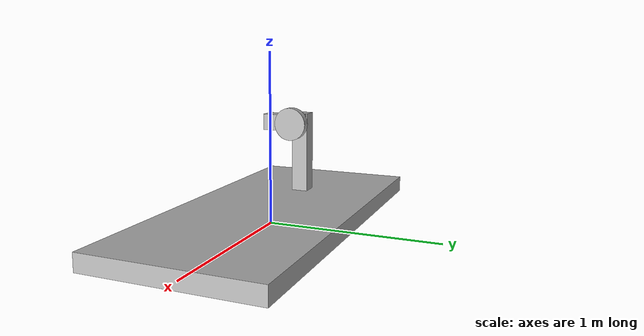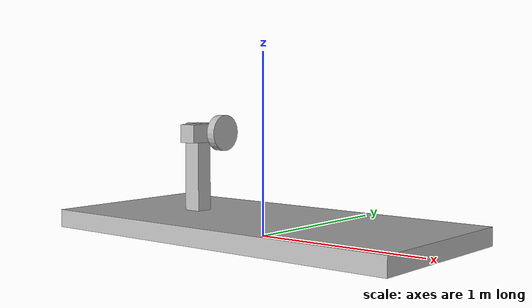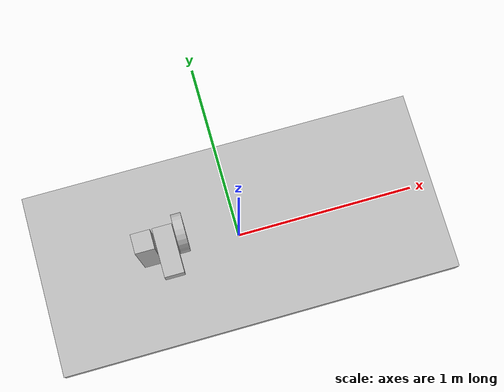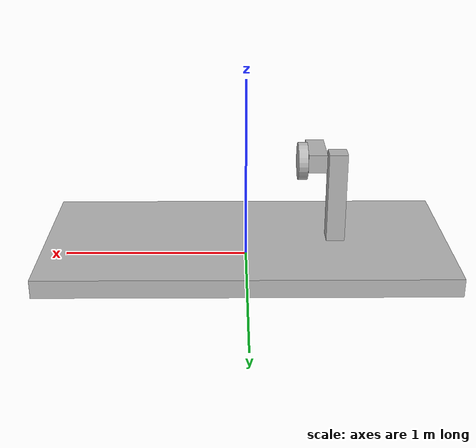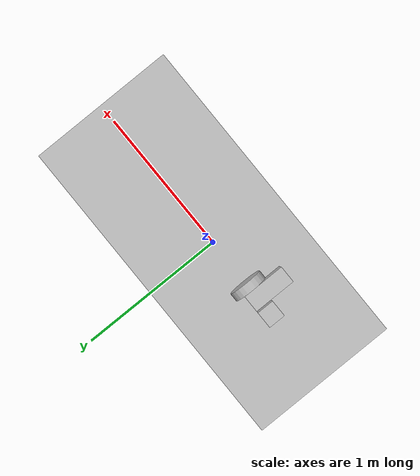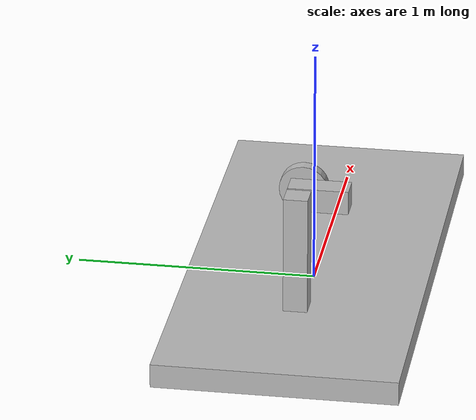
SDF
<?xml version="1.0" ?>
<!-- |    This document was autogenerated by xacro from /home/user/projects/wasp/gz/models/gearbox/model.sdf.xacro | -->
<!-- |    EDITING THIS FILE BY HAND IS NOT RECOMMENDED                                 | -->
<sdf version="1.6">
  &gt;

  <model name="gear_box">
    <link name="heavy_base">
      <!-- position the base such that the bottom touches the floor -->
      <pose>0 0 0.05 0 0 0</pose>
      <inertial>
        <mass>100</mass>
        <!-- kg -->
        <inertia>
          <!-- (mass / 12) * (y*y + z*z) -->
          <ixx>8.4167</ixx>
          <ixy>0</ixy>
          <ixz>0</ixz>
          <!-- (mass / 12) * (x*x + z*z) -->
          <iyy>40.417</iyy>
          <iyz>0</iyz>
          <!-- (mass / 12) * (y*y + x*x) -->
          <izz>48.667</izz>
        </inertia>
      </inertial>
      <!-- Same geometry as visual -->
      <collision name="heavy_base_collision">
        <geometry>
          <box>
            <size>2.2 1 0.1</size>
          </box>
        </geometry>
      </collision>
      <!-- Same geometry as collision -->
      <visual name="heavy_base_visual">
        <geometry>
          <box>
            <size>2.2 1 0.1</size>
          </box>
        </geometry>
        <material>
          <script>
            <uri>model://demo_joint_types/materials/scripts</uri>
            <uri>model://demo_joint_types/materials/textures</uri>
            <name>demo_joint_types/legend</name>
          </script>
        </material>
      </visual>
    </link>
    <link name="gearbox_base">
      <!-- Put the bottom of the child on top of the parent
                 z = 0.5 * gearbox_base_sz_z + heavy_base_sz_z
                 x = put it near gearbox label on heavy base
                 -->
      <pose>-.49 0 0.35 0 0 0</pose>
      <inertial>
        <inertia>
          <!-- (mass / 12) * (y*y + z*z) -->
          <ixx>0.021667</ixx>
          <ixy>0</ixy>
          <ixz>0</ixz>
          <!-- (mass / 12) * (x*x + z*z) -->
          <iyy>0.021667</iyy>
          <iyz>0</iyz>
          <!-- (mass / 12) * (y*y + x*x) -->
          <izz>0.0016667</izz>
        </inertia>
      </inertial>
      <!-- Same geometry as visual -->
      <collision name="gearbox_base_collision">
        <geometry>
          <box>
            <size>0.1 0.1 0.5</size>
          </box>
        </geometry>
      </collision>
      <!-- Same geometry as collision -->
      <visual name="gearbox_base_visual">
        <geometry>
          <box>
            <size>0.1 0.1 0.5</size>
          </box>
        </geometry>
        <material>
          <script>
            <uri>model://demo_joint_types/materials/scripts</uri>
            <uri>model://demo_joint_types/materials/textures</uri>
            <name>demo_joint_types/reference</name>
          </script>
        </material>
      </visual>
    </link>
    <joint name="gearbox_base_to_heavy_base" type="fixed">
      <parent>heavy_base</parent>
      <child>gearbox_base</child>
    </joint>
    <!-- The reference body for the gearbox -->
    <link name="gearbox_input">
      <pose>-.38 -0.075 0.55 0 0 0</pose>
      <inertial>
        <inertia>
          <!-- (mass / 12) * (y*y + z*z) -->
          <ixx>0.0060417</ixx>
          <ixy>0</ixy>
          <ixz>0</ixz>
          <!-- (mass / 12) * (x*x + z*z) -->
          <iyy>0.0016667</iyy>
          <iyz>0</iyz>
          <!-- (mass / 12) * (y*y + x*x) -->
          <izz>0.0060417</izz>
        </inertia>
      </inertial>
      <!-- Same geometry as visual -->
      <collision name="gearbox_input_collision">
        <geometry>
          <box>
            <size>0.1 0.25 0.1</size>
          </box>
        </geometry>
      </collision>
      <!-- Same geometry as collision -->
      <visual name="gearbox_input_visual">
        <geometry>
          <box>
            <size>0.1 0.25 0.1</size>
          </box>
        </geometry>
        <material>
          <script>
            <uri>model://demo_joint_types/materials/scripts</uri>
            <uri>model://demo_joint_types/materials/textures</uri>
            <name>demo_joint_types/parent</name>
          </script>
        </material>
      </visual>
    </link>
    <!-- The output of the gearbox is a free spinning cylinder -->
    <link name="gearbox_output">
      <gravity>0</gravity>
      <pose>-.3 0.0 0.55 0 1.5708 0</pose>
      <inertial>
        <mass>0.1</mass>
        <!-- kg -->
        <inertia>
          <!-- (mass / 12) * (3 * radius * radius + length * length) -->
          <ixx>0.00027083</ixx>
          <ixy>0</ixy>
          <ixz>0</ixz>
          <!-- (mass / 12) * (3 * radius * radius + length * length) -->
          <iyy>0.00027083</iyy>
          <iyz>0</iyz>
          <!-- mass * radius * radius * 0.5 -->
          <izz>0.0005</izz>
        </inertia>
      </inertial>
      <!-- Same geometry as visual -->
      <collision name="gearbox_output_collision">
        <geometry>
          <cylinder>
            <radius>0.1</radius>
            <length>0.05</length>
          </cylinder>
        </geometry>
      </collision>
      <!-- Same geometry as collision -->
      <visual name="gearbox_output_visual">
        <geometry>
          <cylinder>
            <radius>0.1</radius>
            <length>0.05</length>
          </cylinder>
        </geometry>
        <material>
          <script>
            <uri>model://demo_joint_types/materials/scripts</uri>
            <uri>model://demo_joint_types/materials/textures</uri>
            <name>demo_joint_types/child</name>
          </script>
        </material>
      </visual>
    </link>
    <!-- Gearbox links revolute joints, so create a couple revolute joints -->
    <joint name="gearbox_input_joint" type="revolute">
      <parent>gearbox_base</parent>
      <child>gearbox_input</child>
      <axis>
        <xyz>1 0 0</xyz>
      </axis>
      <pose>0 0.075 0 0 0 0</pose>
    </joint>
    <joint name="gearbox_output_joint" type="revolute">
      <parent>gearbox_base</parent>
      <child>gearbox_output</child>
      <axis>
        <xyz>0 0 1</xyz>
      </axis>
      <pose>0 0 0 0 0 0</pose>
    </joint>
    <joint name="gearbox_demo" type="gearbox">
      <parent>gearbox_input</parent>
      <child>gearbox_output</child>
      <gearbox_reference_body>gearbox_base</gearbox_reference_body>
      <gearbox_ratio>5</gearbox_ratio>
      <!-- input axis (relative to child) -->
      <axis>
        <xyz>0 0 1</xyz>
      </axis>
      <!-- output axis (relative to child) -->
      <axis2>
        <xyz>0 0 1</xyz>
      </axis2>
    </joint>
  </model>
</sdf>
